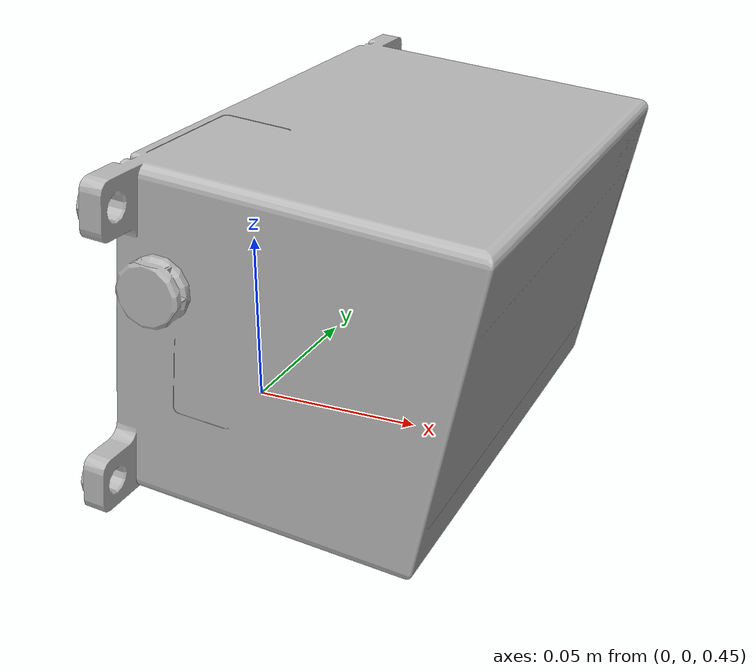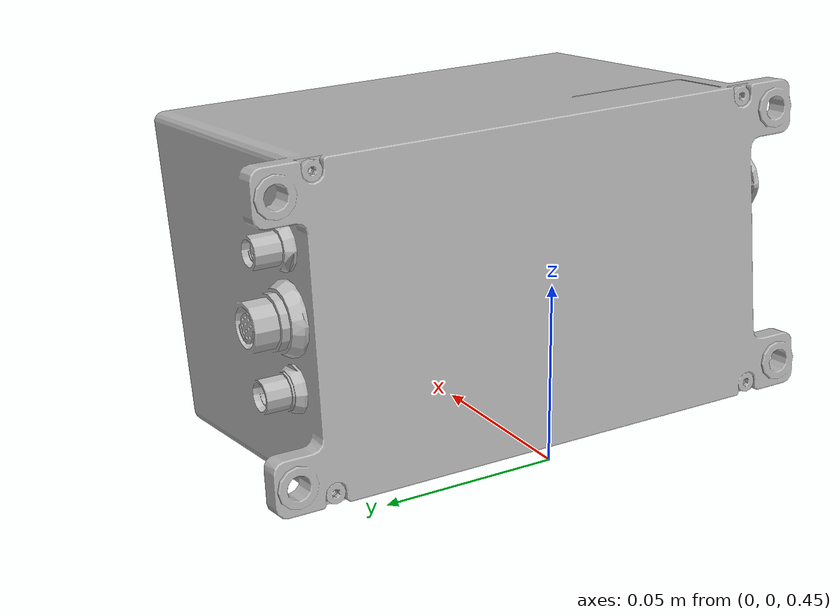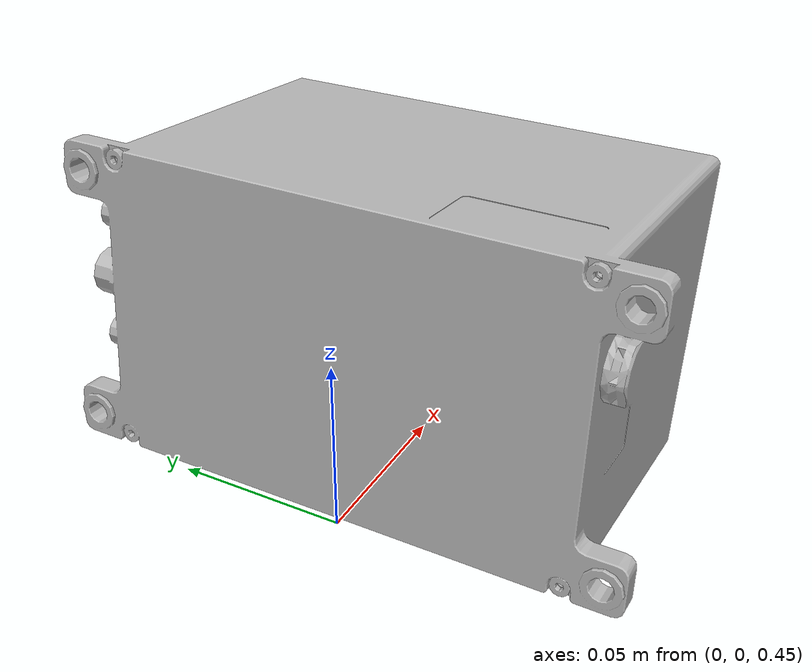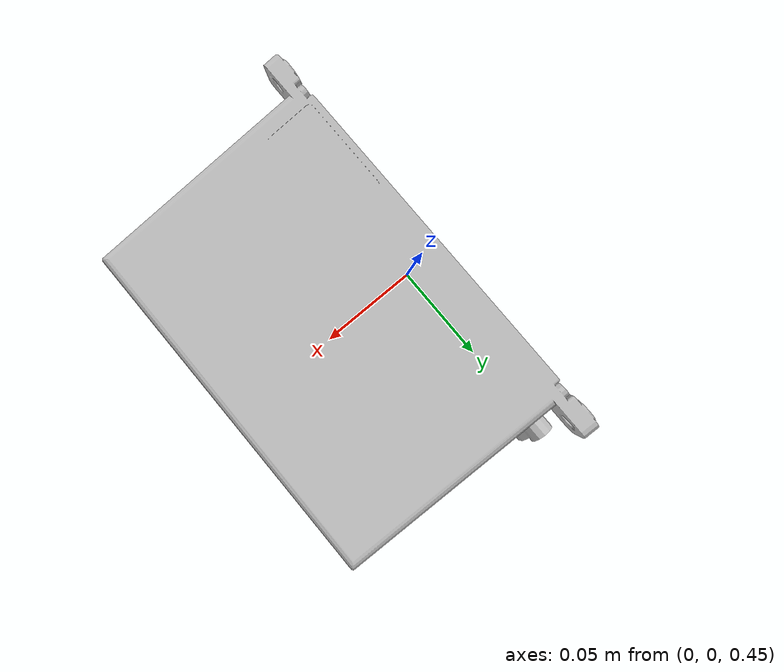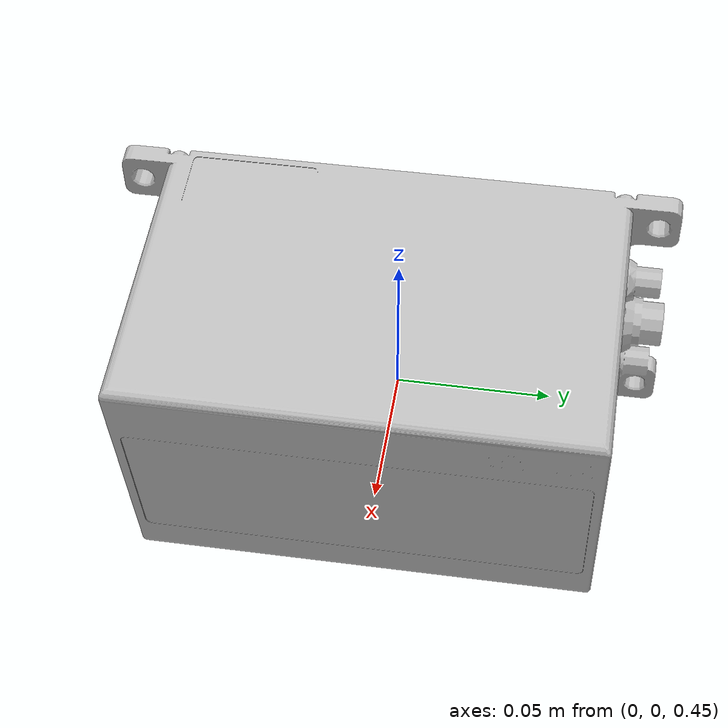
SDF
<?xml version="1.0" ?>
<sdf version="1.4">
  <world name="default">

    <include>
      <uri>model://sun</uri>
    </include>

    <include>
      <uri>model://ground_plane</uri>
    </include>

    <include>
      <uri>model://IBEO</uri>
      <pose>0 0 0.5 0 0.1 0</pose>
    </include>

  </world>
</sdf>

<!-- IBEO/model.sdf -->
<!-- -*- mode: XML -*- -->
<?xml version="1.0"?>
<sdf version="1.4">
  <model name="IBEO">  <!-- the center of origin located at the center of the back side of the sensor  , X - sensor forward, Z- sensor upward -->
    <pose>0 0 1 0 0 0 </pose>
    <link name="link">
      <pose>0 0 0 0 0 0</pose>
      <gravity>0</gravity>

      <visual name='visual'>
	<pose>0 0 0 1.57079633 0 1.57079633</pose>
	<geometry>
	  <mesh>
	    <uri>model://IBEO/meshes/IBEO.STL </uri>
	  </mesh>
	</geometry>
      </visual>

<!-- Top Planes -->
      <sensor name='ibeo-t1' type='ray'> 	<!-- first top plane -->
	<pose>0.044 0.01045 0.000 0 -0.00698132 0</pose> <!-- laser beam origin at (x,y,z) = (440mm,104.5mm,0mm) , beam center direction 0.4deg up (pitch = -0.4deg = -0.007rad) -->
	<ray>
	  <scan>
	    <horizontal>
	      <samples>71</samples>	 <!--range of top planes is 70deg, resulution 1deg: 70deg/1deg=70 => 71points (in combination with bottom plains the total resulution is 0.5deg)  -->
	      <resolution>1</resolution>
	      <min_angle>-0.77667</min_angle>    <!-- min_ang = -44.5deg -->
	      <max_angle>0.44505</max_angle>	 <!-- max_ang = 25.5deg  -->
	    </horizontal>
	  </scan>
	  <range>
	    <min>0.3</min>
	    <max>30</max>
	    <resolution>1</resolution>
	  </range>
	</ray>
	<always_on>1</always_on>
	<update_rate>500</update_rate> <!-- 12.5Hz -->
	<visualize>1</visualize>
      </sensor>

      <sensor name='ibeo-t2' type='ray'>	<!-- second top plane -->
	<pose>0.044 0.01045 0.000 0 -0.02094395 0</pose> <!-- beam center direction 0.8deg up (pitch = -0.8deg = -0.0209rad) -->
	<ray>
	  <scan>
	    <horizontal>
	      <samples>71</samples>	 <!--range of top planes is 70deg, resulution 1deg: 70deg/1deg=70 => 71points (in combination with bottom plains the total resulution is 0.5deg)  -->
	      <resolution>1</resolution>
	      <min_angle>-0.77667</min_angle>    <!-- min_ang = -44.5deg -->
	      <max_angle>0.44505</max_angle>	 <!-- max_ang = 25.5deg  -->
	    </horizontal>
	  </scan>
	  <range>
	    <min>0.3</min>
	    <max>30</max>
	    <resolution>1</resolution>
	  </range>
	</ray>
	<always_on>1</always_on>
	<update_rate>500</update_rate> <!-- 12.5Hz -->
	<visualize>1</visualize>
      </sensor>

<!-- Bottom Planes -->
      <sensor name='ibeo-b1' type='ray'>
	<pose>0.044 0.01045 0.000 0 0.00698132 0</pose> <!-- beam center direction -0.4deg up (pitch = 0.4deg = 0.007rad) -->
	<ray>
	  <scan>
	    <horizontal>
	      <samples>71</samples>	 <!--range of top planes is 70deg, resulution 1deg: 70deg/1deg=70 => 71points (in combination with bottom plains the total resulution is 0.5deg)  -->
	      <resolution>1</resolution>
	      <min_angle>-0.78534</min_angle>  <!-- min_ang = -45deg -->
	      <max_angle>0.43633</max_angle>   <!-- max_ang = 25deg   -->
	    </horizontal>
	  </scan>
	  <range>
	    <min>0.3</min>
	    <max>30</max>
	    <resolution>1</resolution>
	  </range>
	</ray>
	<always_on>1</always_on>
	<update_rate>500</update_rate> <!-- 12.5Hz -->
	<visualize>1</visualize>
      </sensor>

      <sensor name='ibeo-b2' type='ray'>
	<pose>0.044 0.01045 0.000 0 0.02094395 0</pose> <!-- beam center direction -0.8deg up (pitch = 0.8deg = 0.0209rad) -->
	<ray>
	  <scan>
	    <horizontal>
	      <samples>71</samples>	 <!--range of top planes is 70deg, resulution 1deg: 70deg/1deg=70 => 71points (in combination with bottom plains the total resulution is 0.5deg)  -->
	      <resolution>1</resolution>
	      <min_angle>-0.78534</min_angle>  <!-- min_ang = -45deg -->
	      <max_angle>0.43633</max_angle>   <!-- max_ang = 25deg   -->
	    </horizontal>
	  </scan>
	  <range>
	    <min>0.3</min>
	    <max>30</max>
	    <resolution>1</resolution>
	  </range>
	</ray>
	<always_on>1</always_on>
	<update_rate>500</update_rate> <!-- 12.5Hz -->
	<visualize>1</visualize>
      </sensor>

    </link>

  <plugin name="IBEOPLUGIN" filename="libIBEO.so">
	<Sensor_Name>IBEO</Sensor_Name>
	<Robot_Name_Space>Robot</Robot_Name_Space>

	<row_t1_name>ibeo-t1</row_t1_name>
	<row_t2_name>ibeo-t2</row_t2_name>
	<row_b1_name>ibeo-b1</row_b1_name>
	<row_b2_name>ibeo-b2</row_b2_name>

	<row_t1_pitch_ang>-0.006981</row_t1_pitch_ang>
	<row_t2_pitch_ang>-0.020944</row_t2_pitch_ang>
	<row_b1_pitch_ang>0.006981</row_b1_pitch_ang>
	<row_b2_pitch_ang>0.020944</row_b2_pitch_ang>

	<rows_t_start_ang>0.44505</rows_t_start_ang>
	<rows_t_end_ang>-0.77667</rows_t_end_ang>
	<rows_b_start_ang>0.43633</rows_b_start_ang>
	<rows_b_end_ang>-0.78534</rows_b_end_ang>

	<rows_yaw_ang_increment>-0.0174533</rows_yaw_ang_increment>  	<!-- 1.0deg=0.0174533rad    resulution of single row is 1deg in combination we get 0.5deg -->
	<scanning_frequency>12.5</scanning_frequency> 		     	<!-- 12.5Hz -->
	<distance_sample_resolution>0.04</distance_sample_resolution>	<!-- 40mm -->
	<distance_min>0.3</distance_min>
	<distance_max>30</distance_max>

	<TF_parent_link_name>IBEO_base_link</TF_parent_link_name>
	<laser_TF_point_of_origin_X>0.04400</laser_TF_point_of_origin_X>
	<laser_TF_point_of_origin_Y>0.01045</laser_TF_point_of_origin_Y>
	<laser_TF_point_of_origin_Z>0</laser_TF_point_of_origin_Z>
	<laser_TF_point_of_origin_Rol>0</laser_TF_point_of_origin_Rol>
	<laser_TF_point_of_origin_Pit>0</laser_TF_point_of_origin_Pit>
	<laser_TF_point_of_origin_Yow>0</laser_TF_point_of_origin_Yow>

	<Delay>0.00</Delay>
  </plugin>

  </model>
</sdf>
